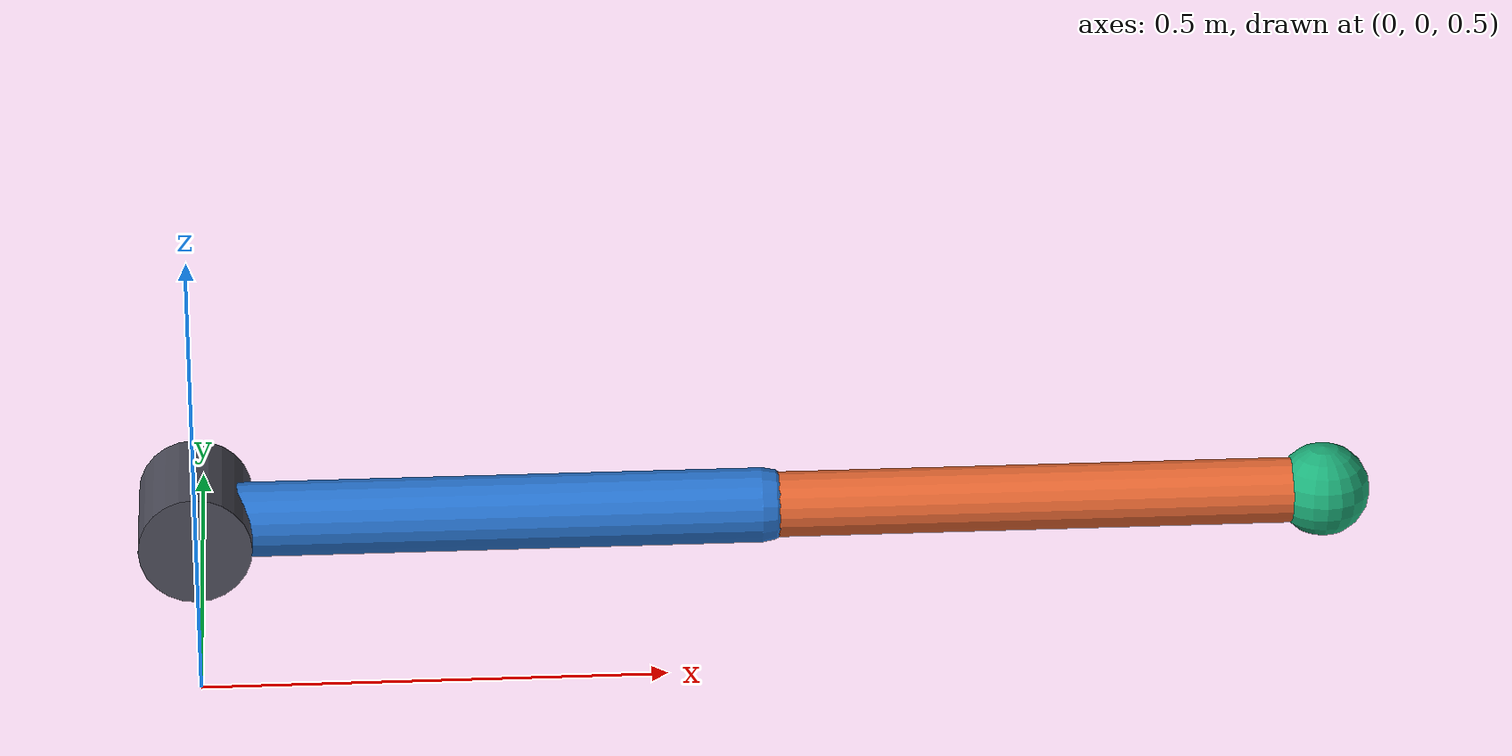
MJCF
<mujoco model="planar_two_link_slider">
  <compiler angle="radian" autolimits="true"/>

  <option timestep="0.001" integrator="implicitfast" gravity="0 0 -9.81">
    <flag energy="enable"/>
  </option>

  <default>
    <joint type="hinge" axis="0 1 0" damping="0.1"/>
    <geom contype="0" conaffinity="0" condim="3"
          friction="0.3 0.005 0.0001" solref="0.08 1.5" solimp="0.2 0.7 0.02"/>
    <motor ctrlrange="-60 60"/>
  </default>

  <visual>
    <global offwidth="1280" offheight="720"/>
  </visual>

  <worldbody>
    <light name="main_light" pos="0.5 -1.5 2.0" dir="-0.2 0.6 -0.8" diffuse="0.9 0.9 0.9"/>

    <!-- Horizontal contact surface, top face exactly at z = 0. -->
    <geom name="surface" type="box" pos="1.0 0 -0.05" size="1.5 0.5 0.05"
          contype="1" conaffinity="1" rgba="0.55 0.55 0.6 1"/>

    <!-- Robot base ("shoulder") mounted above the surface. -->
    <body name="base" pos="0 0 0.7">
      <geom name="base_geom" type="cylinder" fromto="0 -0.07 0 0 0.07 0"
            size="0.06" mass="1.0" rgba="0.3 0.3 0.35 1"/>

      <body name="link1" pos="0 0 0">
        <joint name="shoulder" range="-1.9 1.9"/>
        <geom name="link1_geom" type="capsule" fromto="0 0 0 0.6 0 0"
              size="0.040" mass="2.0" rgba="0.16 0.47 0.84 1"/>

        <body name="link2" pos="0.6 0 0">
          <joint name="elbow" range="0.15 2.9"/>
          <geom name="link2_geom" type="capsule" fromto="0 0 0 0.6 0 0"
                size="0.035" mass="1.5" rgba="0.92 0.41 0.20 1"/>

          <!-- Spherical end-effector pad: the ONLY robot geom that can
               touch the surface. -->
          <geom name="end_effector_pad" type="sphere" pos="0.6 0 0" size="0.05"
                contype="1" conaffinity="1" mass="0.3" rgba="0.11 0.69 0.48 1"/>
          <site name="ee_site" pos="0.6 0 0" size="0.012" rgba="1 1 0 1"/>
        </body>
      </body>
    </body>
  </worldbody>

  <actuator>
    <motor name="shoulder_motor" joint="shoulder"/>
    <motor name="elbow_motor" joint="elbow"/>
  </actuator>

  <keyframe>
    <key name="init" qpos="0.0076 1.9930"/>
  </keyframe>
</mujoco>
